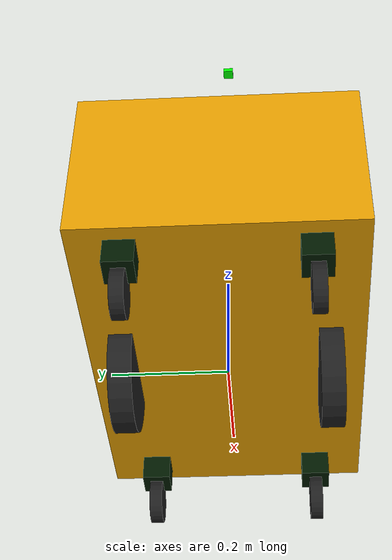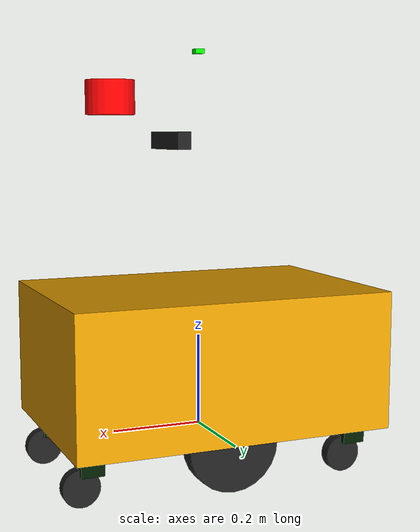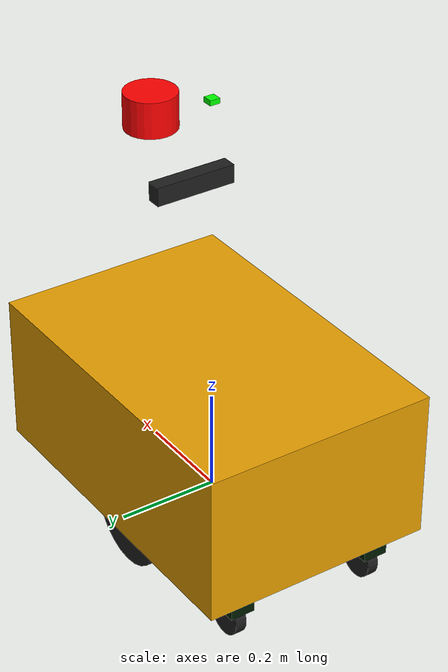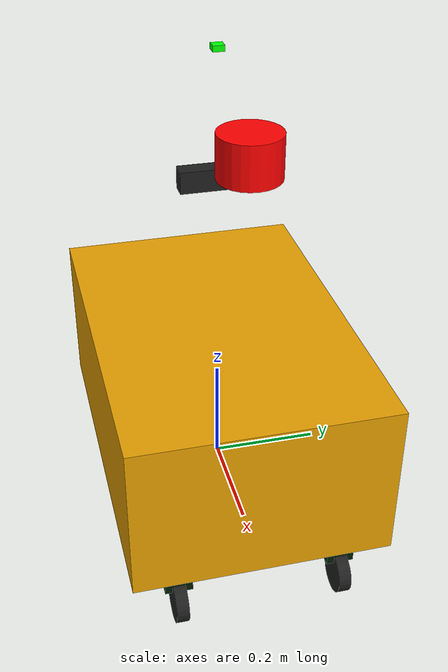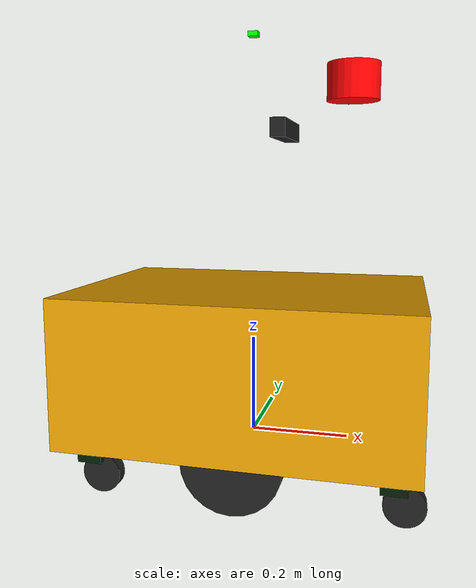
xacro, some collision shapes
<?xml version="1.0"?>
    <robot xmlns:xacro="http://www.ros.org/wiki/xacro"  name="moborobo_short">
        <xacro:include filename="robot_core.xacro" />
        <xacro:include filename="controller.xacro" />
        <xacro:include filename="camera.xacro"/>
        <xacro:include filename="imu.xacro"/>
        <xacro:include filename="lidar.xacro"/>
        <xacro:include filename="gps.xacro"/>
    </robot>

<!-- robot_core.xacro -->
<robot xmlns:xacro="http://www.ros.org/wiki/xacro" name="moborobo_robot">

  <xacro:property name="mesh_path" value="file://$(find moborobo_robot)/meshes/moborobo_short.stl"/>

  <link name="base_link">
    <visual>
      <geometry>
        <mesh filename="${mesh_path}" scale="1 1 1"/>
      </geometry>
    </visual>
    <collision>
      <origin xyz="0 0 0.04" rpy="0 0 0"/>
      <geometry>
        <box size="0.70 0.470 0.3"/>
      </geometry>
    </collision>
    <inertial>
      <origin xyz="0 0 0.06" rpy="0 0 0"/>
      <mass value="20.0"/>
      <inertia ixx="0.51816" ixy="0" ixz="0" iyy="0.966664" iyz="0" izz="1.18484"/>
    </inertial>
  </link>

  <link name="base_footprint"/>
  <joint name="base_footprint_joint" type="fixed">
    <parent link="base_footprint"/>
    <child link="base_link"/>
    <origin xyz="0 0 0.120" rpy="0 0 0"/>
  </joint>

  <xacro:macro name="caster_wheel" params="caster_name caster_xyz wheel_xyz">
    <link name="${caster_name}">
      <visual>
        <geometry>
          <box size="0.05 0.05 0.05"/>
        </geometry>
        <material name="green">
          <color rgba="0.0 0.1 0.0 1"/>
        </material>
      </visual>
      <collision>
        <geometry>
          <box size="0.05 0.05 0.05"/>
        </geometry>
      </collision>
      <inertial>
        <mass value="0.5"/>
        <inertia ixx="0.000208332" ixy="0" ixz="0" iyy="0.000208332" iyz="0" izz="0.000208332"/>
      </inertial>
    </link>

    <joint name="${caster_name}_joint" type="continuous">
      <parent link="base_link"/>
      <child link="${caster_name}"/>
      <origin xyz="${caster_xyz}" rpy="0 0 0"/>
      <axis xyz="0 0 1"/>
    </joint>

    <link name="${caster_name}_wheel">
      <visual>
        <geometry>
          <cylinder radius="0.04" length="0.0228"/>
        </geometry>
      </visual>
      <collision>
        <geometry>
          <cylinder radius="0.04" length="0.0228"/>
        </geometry>
      </collision>
      <inertial>
        <mass value="0.5"/>
        <inertia ixx="0.00022166" ixy="0" ixz="0" iyy="0.00022166" iyz="0" izz="0.0004"/>
      </inertial>
    </link>

    <joint name="${caster_name}_wheel_joint" type="continuous">
      <parent link="${caster_name}"/>
      <child link="${caster_name}_wheel"/>
      <origin xyz="${wheel_xyz}" rpy="-1.5708 0 0"/>
      <axis xyz="0 0 1"/>
    </joint>
  </xacro:macro>

  <xacro:caster_wheel caster_name="back_left_caster" caster_xyz="-0.300 0.150 -0.130" wheel_xyz="0.02 0 -0.05"/>
  <xacro:caster_wheel caster_name="back_right_caster" caster_xyz="-0.300 -0.150 -0.130" wheel_xyz="0.02 0 -0.05"/>
  <xacro:caster_wheel caster_name="front_left_caster" caster_xyz="0.300 0.150 -0.130" wheel_xyz="0.02 0 -0.05"/>
  <xacro:caster_wheel caster_name="front_right_caster" caster_xyz="0.300 -0.150 -0.130" wheel_xyz="0.02 0 -0.05"/>

  <link name="right_wheel">
    <visual>
      <geometry>
        <cylinder radius="0.1" length="0.04"/>
      </geometry>
    </visual>
    <collision>
      <geometry>
        <cylinder radius="0.1" length="0.04"/>
      </geometry>
    </collision>
    <inertial>
      <mass value="2"/>
      <inertia ixx="0.005066668" ixy="0" ixz="0" iyy="0.005066668" iyz="0" izz="0.01"/>
    </inertial>
  </link>

  <joint name="right_wheel_joint" type="continuous">
    <parent link="base_link"/>
    <child link="right_wheel"/>
    <origin xyz="0.0 -0.175 -0.120" rpy="-1.5708 0 0"/>
    <axis xyz="0 0 1"/>
  </joint>

  <link name="left_wheel">
    <visual>
      <geometry>
        <cylinder radius="0.1" length="0.04"/>
      </geometry>
    </visual>
    <collision>
      <geometry>
        <cylinder radius="0.1" length="0.04"/>
      </geometry>
    </collision>
    <inertial>
      <mass value="0.5"/>
      <inertia ixx="0.001266667" ixy="0" ixz="0" iyy="0.001266667" iyz="0" izz="0.0025"/>
    </inertial>
  </link>

  <joint name="left_wheel_joint" type="continuous">
    <parent link="base_link"/>
    <child link="left_wheel"/>
    <origin xyz="0.0 0.175 -0.120" rpy="-1.5708 0 0"/>
    <axis xyz="0 0 1"/>
  </joint>

  <gazebo>
    <plugin name="gazebo_ros_joint_state_publisher" filename="libgazebo_ros_joint_state_publisher.so">
      <update_rate>50</update_rate>
      <joint_name>front_left_caster_joint</joint_name>
      <joint_name>front_left_caster_wheel_joint</joint_name>
      <joint_name>front_right_caster_joint</joint_name>
      <joint_name>front_right_caster_wheel_joint</joint_name>
      <joint_name>back_left_caster_joint</joint_name>
      <joint_name>back_left_caster_wheel_joint</joint_name>
      <joint_name>back_right_caster_joint</joint_name>
      <joint_name>back_right_caster_wheel_joint</joint_name>
      <joint_name>left_wheel_joint</joint_name>
      <joint_name>right_wheel_joint</joint_name>
    </plugin>
  </gazebo>

  <!-- Gazebo materials -->
  <gazebo reference="back_left_caster"><material>Gazebo/White</material></gazebo>
  <gazebo reference="back_left_caster_wheel"><material>Gazebo/Black</material></gazebo>
  <gazebo reference="back_right_caster"><material>Gazebo/White</material></gazebo>
  <gazebo reference="back_right_caster_wheel"><material>Gazebo/Black</material></gazebo>
  <gazebo reference="front_left_caster"><material>Gazebo/White</material></gazebo>
  <gazebo reference="front_left_caster_wheel"><material>Gazebo/Black</material></gazebo>
  <gazebo reference="front_right_caster"><material>Gazebo/White</material></gazebo>
  <gazebo reference="front_right_caster_wheel"><material>Gazebo/Black</material></gazebo>
  <gazebo reference="left_wheel"><material>Gazebo/Black</material></gazebo>
  <gazebo reference="right_wheel"><material>Gazebo/Black</material></gazebo>

</robot>

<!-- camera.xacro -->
<robot xmlns:xacro="http://www.ros.org/wiki/xacro" >

    <joint name="camera_joint" type="fixed">
        <parent link="base_link"/>
        <child link="camera_link"/>
        <origin xyz="0.065 0 0.51" rpy="0 0 0"/>
    </joint>

    <link name="camera_link">
        <visual>
            <geometry>
                <box size="0.03 0.163 0.037"/>
            </geometry>
        </visual>
    </link>

    <joint name="camera_optical_joint" type="fixed">
        <parent link="camera_link"/>
        <child link="camera_link_optical"/>
        <origin xyz="0 0 0" rpy="${-pi/2} 0 ${-pi/2}"/>
    </joint>

    <link name="camera_link_optical"></link>

    <gazebo reference="camera_link">

        <sensor name="camera" type="camera">
            <pose> 0 0 0 0 0 0 </pose>
            <visualize>true</visualize>
            <update_rate>10</update_rate>
            <camera>
                <horizontal_fov>1.089</horizontal_fov>
                <image>
                    <format>R8G8B8</format>
                    <width>640</width>
                    <height>480</height>
                </image>
                <clip>
                    <near>0.05</near>
                    <far>8.0</far>
                </clip>
            </camera>
            <plugin name="camera_controller" filename="libgazebo_ros_camera.so">
                <ros>
                    <remapping>~/image_raw:=image_raw</remapping>
                    <remapping>~/camera_info:=camera_info</remapping>
                </ros>
                <camera_name>zed2</camera_name>
                <frame_name>camera_link_optical</frame_name>
            </plugin>
        </sensor>
    </gazebo>

    <gazebo reference="camera_link">
        <material>Gazebo/Black</material>
      </gazebo>

</robot>

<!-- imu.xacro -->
<robot xmlns:xacro="http://www.ros.org/wiki/xacro">

    <link name="imu_link">
      <visual>
        <geometry>
          <box size="0.01 0.01 0.005"/>
        </geometry>
      </visual>

      <collision>
        <geometry>
          <box size="0.01 0.01 0.005"/>
        </geometry>
      </collision>

      <inertial>
        <mass value="0.01"/>
        <inertia ixx="0.000001" ixy="0" ixz="0" iyy="0.000001" iyz="0" izz="0.000001"/>
      </inertial>
    </link>

    <!-- IMU mounted directly on base_link for stable reference -->
    <joint name="imu_joint" type="fixed">
      <parent link="base_link"/>
      <child link="imu_link"/>
      <origin xyz="0.0 0.0 0.1" rpy="0 0 0"/>  <!-- Centered on robot body -->
    </joint>

  <gazebo reference="imu_link">
    <gravity>true</gravity>
    <sensor name="moborobo_imu" type="imu">
        <always_on>true</always_on>
        <update_rate>50</update_rate>
        <imu>
          <angular_velocity>
            <x>
              <noise type="gaussian">
                <mean>0.0</mean>
                <stddev>2e-4</stddev>
              </noise>
            </x>
            <y>
              <noise type="gaussian">
                <mean>0.0</mean>
                <stddev>2e-4</stddev>
              </noise>
            </y>
            <z>
              <noise type="gaussian">
                <mean>0.0</mean>
                <stddev>2e-4</stddev>
              </noise>
            </z>
          </angular_velocity>
          <linear_acceleration>
            <x>
              <noise type="gaussian">
                <mean>0.0</mean>
                <stddev>1.7e-2</stddev>
              </noise>
            </x>
            <y>
              <noise type="gaussian">
                <mean>0.0</mean>
                <stddev>1.7e-2</stddev>
              </noise>
            </y>
            <z>
              <noise type="gaussian">
                <mean>0.0</mean>
                <stddev>1.7e-2</stddev>
              </noise>
            </z>
          </linear_acceleration>
        </imu>
        <plugin name="moborobo_imu" filename="libgazebo_ros_imu_sensor.so">
            <ros>
                <namespace>imu</namespace>
                <remapping>~/out:=data</remapping>
            </ros>
            <frame_name>imu_link</frame_name>
            <initial_orientation_as_reference>false</initial_orientation_as_reference>
        </plugin>
    </sensor>
    <material>Gazebo/Orange</material>
  </gazebo>

</robot>

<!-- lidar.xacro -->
<robot xmlns:xacro="http://www.ros.org/wiki/xacro">

    <!-- Velodyne LiDAR for iG-LIO compatibility -->
    <joint name="velodyne_joint" type="fixed">
        <parent link="base_link"/>
        <child link="velodyne"/>
        <origin xyz="0.2 0 0.6" rpy="0 0 0"/>
    </joint>

    <link name="velodyne">
        <visual>
            <geometry>
                <cylinder radius="0.052" length="0.072"/>
            </geometry>
            <material name="velodyne_material">
                <color rgba="1.0 0.0 0.0 1.0"/>
            </material>
        </visual>
        <collision>
            <geometry>
                <cylinder radius="0.052" length="0.072"/>
            </geometry>
        </collision>
        <inertial>
            <mass value="0.83"/>
            <origin xyz="0 0 0"/>
            <inertia ixx="0.001" ixy="0" ixz="0" iyy="0.001" iyz="0" izz="0.001"/>
        </inertial>
    </link>

    <!-- Use actual Velodyne plugin that includes time and ring fields -->
    <gazebo reference="velodyne">
        <sensor type="ray" name="velodyne_sensor">
            <pose>0 0 0 0 0 0</pose>
            <visualize>false</visualize>
            <update_rate>10</update_rate>
            <ray>
                <scan>
                    <horizontal>
                        <samples>1800</samples>  <!-- More samples for Velodyne-like behavior -->
                        <resolution>1</resolution>
                        <min_angle>-3.141592654</min_angle>
                        <max_angle>3.141592654</max_angle>
                    </horizontal>
                    <vertical>
                        <samples>16</samples>   <!-- 16 rings like VLP-16 -->
                        <resolution>1</resolution>
                        <min_angle>-0.261799388</min_angle>
                        <max_angle>0.261799388</max_angle>
                    </vertical>
                </scan>
                <range>
                    <min>0.1</min>
                    <max>150.0</max>
                    <resolution>0.001</resolution>
                </range>
                <noise>
                    <type>gaussian</type>
                    <mean>0.0</mean>
                    <stddev>0.02</stddev>
                </noise>
            </ray>
            <!-- Use the proper Velodyne plugin that adds time and ring fields -->
            <plugin name="gazebo_ros_velodyne_controller" filename="libgazebo_ros_velodyne_laser.so">
                <ros>
                    <namespace></namespace>
                    <remapping>~/out:=points_raw</remapping>
                </ros>
                <frameName>velodyne</frameName>
                <min_range>0.1</min_range>
                <max_range>150.0</max_range>
                <gaussianNoise>0.008</gaussianNoise>
                <organize_cloud>false</organize_cloud>
            </plugin>
        </sensor>
        <material>Gazebo/Red</material>
    </gazebo>

</robot>

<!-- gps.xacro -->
<robot xmlns:xacro="http://www.ros.org/wiki/xacro">

    <link name="gps_link">
      <visual>
        <geometry>
          <box size="0.02 0.02 0.01"/>
        </geometry>
        <material name="gps_material">
          <color rgba="0.0 1.0 0.0 1.0"/>
        </material>
      </visual>

      <collision>
        <geometry>
          <box size="0.02 0.02 0.01"/>
        </geometry>
      </collision>

      <inertial>
        <mass value="0.01"/>
        <inertia ixx="0.000001" ixy="0" ixz="0" iyy="0.000001" iyz="0" izz="0.000001"/>
      </inertial>
    </link>

    <!-- GPS mounted on top of robot -->
    <joint name="gps_joint" type="fixed">
      <parent link="base_link"/>
      <child link="gps_link"/>
      <origin xyz="0.0 0.0 0.7" rpy="0 0 0"/>
    </joint>

    <gazebo reference="gps_link">
      <sensor name="gps_sensor" type="gps">
        <always_on>true</always_on>
        <update_rate>10.0</update_rate>
        <gps>
          <position_sensing>
            <horizontal>
              <noise type="gaussian">
                <mean>0.0</mean>
                <stddev>2.0</stddev>  <!-- 2 meter accuracy -->
              </noise>
            </horizontal>
            <vertical>
              <noise type="gaussian">
                <mean>0.0</mean>
                <stddev>4.0</stddev>  <!-- 4 meter vertical accuracy -->
              </noise>
            </vertical>
          </position_sensing>
          <velocity_sensing>
            <horizontal>
              <noise type="gaussian">
                <mean>0.0</mean>
                <stddev>0.1</stddev>
              </noise>
            </horizontal>
            <vertical>
              <noise type="gaussian">
                <mean>0.0</mean>
                <stddev>0.1</stddev>
              </noise>
            </vertical>
          </velocity_sensing>
        </gps>
        <plugin name="gps_plugin" filename="libgazebo_ros_gps_sensor.so">
          <ros>
            <namespace>gps</namespace>
            <remapping>~/out:=fix</remapping>
          </ros>
          <frame_name>gps_link</frame_name>
        </plugin>
      </sensor>
      <material>Gazebo/Green</material>
    </gazebo>

</robot>
